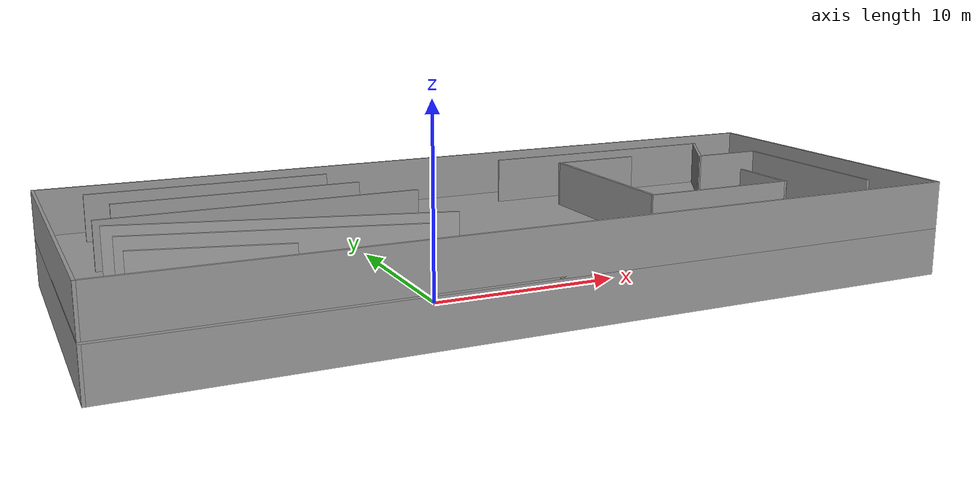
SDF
<?xml version='1.0'?>
<sdf version='1.7'>
  <model name='big_test'>
    <pose>4.2888 2.3837 0 0 -0 0</pose>
    <link name='Floor_0'>
      <collision name='Floor_0_Collision'>
        <geometry>
          <box>
            <size>43 18 0.1</size>
          </box>
        </geometry>
        <pose>0 0 0.05 0 -0 0</pose>
      </collision>
      <visual name='Floor_0_Visual'>
        <pose>0 0 0.05 0 -0 0</pose>
        <geometry>
          <box>
            <size>43 18 0.1</size>
          </box>
        </geometry>
        <material>
          <script>
            <uri>file://media/materials/scripts/gazebo.material</uri>
            <name>Gazebo/Grey</name>
          </script>
          <ambient>1 1 1 1</ambient>
        </material>
        <meta>
          <layer>1</layer>
        </meta>
      </visual>
      <pose>0 -0 2.5 0 -0 0</pose>
    </link>
    <link name='Wall_0'>
      <collision name='Wall_0_Collision'>
        <geometry>
          <box>
            <size>18 0.15 2.5</size>
          </box>
        </geometry>
        <pose>0 0 1.25 0 -0 0</pose>
      </collision>
      <visual name='Wall_0_Visual'>
        <pose>0 0 1.25 0 -0 0</pose>
        <geometry>
          <box>
            <size>18 0.15 2.5</size>
          </box>
        </geometry>
        <material>
          <script>
            <uri>file://media/materials/scripts/gazebo.material</uri>
            <name>Gazebo/Grey</name>
          </script>
          <ambient>1 1 1 1</ambient>
        </material>
        <meta>
          <layer>0</layer>
        </meta>
      </visual>
      <pose>-21.425 -0 0 0 -0 1.5708</pose>
    </link>
    <link name='Wall_1'>
      <collision name='Wall_1_Collision'>
        <geometry>
          <box>
            <size>43 0.15 2.5</size>
          </box>
        </geometry>
        <pose>0 0 1.25 0 -0 0</pose>
      </collision>
      <visual name='Wall_1_Visual'>
        <pose>0 0 1.25 0 -0 0</pose>
        <geometry>
          <box>
            <size>43 0.15 2.5</size>
          </box>
        </geometry>
        <material>
          <script>
            <uri>file://media/materials/scripts/gazebo.material</uri>
            <name>Gazebo/Grey</name>
          </script>
          <ambient>1 1 1 1</ambient>
        </material>
        <meta>
          <layer>0</layer>
        </meta>
      </visual>
      <pose>0 8.925 0 0 -0 0</pose>
    </link>
    <link name='Wall_13'>
      <collision name='Wall_13_Collision'>
        <geometry>
          <box>
            <size>13.5 0.15 2.5</size>
          </box>
        </geometry>
        <pose>0 0 1.25 0 -0 0</pose>
      </collision>
      <visual name='Wall_13_Visual'>
        <pose>0 0 1.25 0 -0 0</pose>
        <geometry>
          <box>
            <size>13.5 0.15 2.5</size>
          </box>
        </geometry>
        <material>
          <script>
            <uri>file://media/materials/scripts/gazebo.material</uri>
            <name>Gazebo/Grey</name>
          </script>
          <ambient>1 1 1 1</ambient>
        </material>
        <meta>
          <layer>1</layer>
        </meta>
      </visual>
      <pose>10.1593 6.46423 2.5 0 -0 0</pose>
    </link>
    <link name='Wall_14'>
      <collision name='Wall_14_Collision'>
        <geometry>
          <box>
            <size>4.5 0.15 2.5</size>
          </box>
        </geometry>
        <pose>0 0 1.25 0 -0 0</pose>
      </collision>
      <visual name='Wall_14_Visual'>
        <pose>0 0 1.25 0 -0 0</pose>
        <geometry>
          <box>
            <size>4.5 0.15 2.5</size>
          </box>
        </geometry>
        <material>
          <script>
            <uri>file://media/materials/scripts/gazebo.material</uri>
            <name>Gazebo/Grey</name>
          </script>
          <ambient>1 1 1 1</ambient>
        </material>
        <meta>
          <layer>1</layer>
        </meta>
      </visual>
      <pose>15.7468 4.58062 2.5 0 -0 -2.0944</pose>
    </link>
    <link name='Wall_15'>
      <collision name='Wall_15_Collision'>
        <geometry>
          <box>
            <size>4 0.15 2.5</size>
          </box>
        </geometry>
        <pose>0 0 1.25 0 -0 0</pose>
      </collision>
      <visual name='Wall_15_Visual'>
        <pose>0 0 1.25 0 -0 0</pose>
        <geometry>
          <box>
            <size>4 0.15 2.5</size>
          </box>
        </geometry>
        <material>
          <script>
            <uri>file://media/materials/scripts/gazebo.material</uri>
            <name>Gazebo/Grey</name>
          </script>
          <ambient>1 1 1 1</ambient>
        </material>
        <meta>
          <layer>1</layer>
        </meta>
      </visual>
      <pose>16.5843 2.69702 2.5 0 -0 0</pose>
    </link>
    <link name='Wall_16'>
      <collision name='Wall_16_Collision'>
        <geometry>
          <box>
            <size>9.75 0.15 2.5</size>
          </box>
        </geometry>
        <pose>0 0 1.25 0 -0 0</pose>
      </collision>
      <visual name='Wall_16_Visual'>
        <pose>0 0 1.25 0 -0 0</pose>
        <geometry>
          <box>
            <size>9.75 0.15 2.5</size>
          </box>
        </geometry>
        <material>
          <script>
            <uri>file://media/materials/scripts/gazebo.material</uri>
            <name>Gazebo/Grey</name>
          </script>
          <ambient>1 1 1 1</ambient>
        </material>
        <meta>
          <layer>1</layer>
        </meta>
      </visual>
      <pose>18.5093 -2.10298 2.5 0 -0 -1.5708</pose>
    </link>
    <link name='Wall_18'>
      <collision name='Wall_18_Collision'>
        <geometry>
          <box>
            <size>4.75 0.15 2.5</size>
          </box>
        </geometry>
        <pose>0 0 1.25 0 -0 0</pose>
      </collision>
      <visual name='Wall_18_Visual'>
        <pose>0 0 1.25 0 -0 0</pose>
        <geometry>
          <box>
            <size>4.75 0.15 2.5</size>
          </box>
        </geometry>
        <material>
          <script>
            <uri>file://media/materials/scripts/gazebo.material</uri>
            <name>Gazebo/Grey</name>
          </script>
          <ambient>1 1 1 1</ambient>
        </material>
        <meta>
          <layer>1</layer>
        </meta>
      </visual>
      <pose>8.53513 4.23108 2.5 0 -0 3.14159</pose>
    </link>
    <link name='Wall_19'>
      <collision name='Wall_19_Collision'>
        <geometry>
          <box>
            <size>9.75 0.15 2.5</size>
          </box>
        </geometry>
        <pose>0 0 1.25 0 -0 0</pose>
      </collision>
      <visual name='Wall_19_Visual'>
        <pose>0 0 1.25 0 -0 0</pose>
        <geometry>
          <box>
            <size>9.75 0.15 2.5</size>
          </box>
        </geometry>
        <material>
          <script>
            <uri>file://media/materials/scripts/gazebo.material</uri>
            <name>Gazebo/Grey</name>
          </script>
          <ambient>1 1 1 1</ambient>
        </material>
        <meta>
          <layer>1</layer>
        </meta>
      </visual>
      <pose>6.23513 -0.568918 2.5 0 -0 -1.5708</pose>
    </link>
    <link name='Wall_2'>
      <collision name='Wall_2_Collision'>
        <geometry>
          <box>
            <size>18 0.15 2.5</size>
          </box>
        </geometry>
        <pose>0 0 1.25 0 -0 0</pose>
      </collision>
      <visual name='Wall_2_Visual'>
        <pose>0 0 1.25 0 -0 0</pose>
        <geometry>
          <box>
            <size>18 0.15 2.5</size>
          </box>
        </geometry>
        <material>
          <script>
            <uri>file://media/materials/scripts/gazebo.material</uri>
            <name>Gazebo/Grey</name>
          </script>
          <ambient>1 1 1 1</ambient>
        </material>
        <meta>
          <layer>0</layer>
        </meta>
      </visual>
      <pose>21.425 -0 0 0 -0 -1.5708</pose>
    </link>
    <link name='Wall_20'>
      <collision name='Wall_20_Collision'>
        <geometry>
          <box>
            <size>8.25 0.15 2.5</size>
          </box>
        </geometry>
        <pose>0 0 1.25 0 -0 0</pose>
      </collision>
      <visual name='Wall_20_Visual'>
        <pose>0 0 1.25 0 -0 0</pose>
        <geometry>
          <box>
            <size>8.25 0.15 2.5</size>
          </box>
        </geometry>
        <material>
          <script>
            <uri>file://media/materials/scripts/gazebo.material</uri>
            <name>Gazebo/Grey</name>
          </script>
          <ambient>1 1 1 1</ambient>
        </material>
        <meta>
          <layer>1</layer>
        </meta>
      </visual>
      <pose>10.2851 -5.36892 2.5 0 -0 0</pose>
    </link>
    <link name='Wall_21'>
      <collision name='Wall_21_Collision'>
        <geometry>
          <box>
            <size>3.75 0.15 2.5</size>
          </box>
        </geometry>
        <pose>0 0 1.25 0 -0 0</pose>
      </collision>
      <visual name='Wall_21_Visual'>
        <pose>0 0 1.25 0 -0 0</pose>
        <geometry>
          <box>
            <size>3.75 0.15 2.5</size>
          </box>
        </geometry>
        <material>
          <script>
            <uri>file://media/materials/scripts/gazebo.material</uri>
            <name>Gazebo/Grey</name>
          </script>
          <ambient>1 1 1 1</ambient>
        </material>
        <meta>
          <layer>1</layer>
        </meta>
      </visual>
      <pose>14.3351 -3.56892 2.5 0 -0 1.5708</pose>
    </link>
    <link name='Wall_23'>
      <collision name='Wall_23_Collision'>
        <geometry>
          <box>
            <size>12.5 0.15 2.5</size>
          </box>
        </geometry>
        <pose>0 0 1.25 0 -0 0</pose>
      </collision>
      <visual name='Wall_23_Visual'>
        <pose>0 0 1.25 0 -0 0</pose>
        <geometry>
          <box>
            <size>12.5 0.15 2.5</size>
          </box>
        </geometry>
        <material>
          <script>
            <uri>file://media/materials/scripts/gazebo.material</uri>
            <name>Gazebo/Grey</name>
          </script>
          <ambient>1 1 1 1</ambient>
        </material>
        <meta>
          <layer>1</layer>
        </meta>
      </visual>
      <pose>-12.9978 6.74337 2.5 0 -0 0</pose>
    </link>
    <link name='Wall_25'>
      <collision name='Wall_25_Collision'>
        <geometry>
          <box>
            <size>12.5 0.15 2.5</size>
          </box>
        </geometry>
        <pose>0 0 1.25 0 -0 0</pose>
      </collision>
      <visual name='Wall_25_Visual'>
        <pose>0 0 1.25 0 -0 0</pose>
        <geometry>
          <box>
            <size>12.5 0.15 2.5</size>
          </box>
        </geometry>
        <material>
          <script>
            <uri>file://media/materials/scripts/gazebo.material</uri>
            <name>Gazebo/Grey</name>
          </script>
          <ambient>1 1 1 1</ambient>
        </material>
        <meta>
          <layer>1</layer>
        </meta>
      </visual>
      <pose>-12.1138 3.95194 2.5 0 -0 0</pose>
    </link>
    <link name='Wall_27'>
      <collision name='Wall_27_Collision'>
        <geometry>
          <box>
            <size>15.75 0.15 2.5</size>
          </box>
        </geometry>
        <pose>0 0 1.25 0 -0 0</pose>
      </collision>
      <visual name='Wall_27_Visual'>
        <pose>0 0 1.25 0 -0 0</pose>
        <geometry>
          <box>
            <size>15.75 0.15 2.5</size>
          </box>
        </geometry>
        <material>
          <script>
            <uri>file://media/materials/scripts/gazebo.material</uri>
            <name>Gazebo/Grey</name>
          </script>
          <ambient>1 1 1 1</ambient>
        </material>
        <meta>
          <layer>1</layer>
        </meta>
      </visual>
      <pose>-11.6985 0.834836 2.5 0 -0 0</pose>
    </link>
    <link name='Wall_3'>
      <collision name='Wall_3_Collision'>
        <geometry>
          <box>
            <size>43 0.15 2.5</size>
          </box>
        </geometry>
        <pose>0 0 1.25 0 -0 0</pose>
      </collision>
      <visual name='Wall_3_Visual'>
        <pose>0 0 1.25 0 -0 0</pose>
        <geometry>
          <box>
            <size>43 0.15 2.5</size>
          </box>
        </geometry>
        <material>
          <script>
            <uri>file://media/materials/scripts/gazebo.material</uri>
            <name>Gazebo/Grey</name>
          </script>
          <ambient>1 1 1 1</ambient>
        </material>
        <meta>
          <layer>0</layer>
        </meta>
      </visual>
      <pose>0 -8.925 0 0 -0 3.14159</pose>
    </link>
    <link name='Wall_30'>
      <collision name='Wall_30_Collision'>
        <geometry>
          <box>
            <size>16 0.15 2.5</size>
          </box>
        </geometry>
        <pose>0 0 1.25 0 -0 0</pose>
      </collision>
      <visual name='Wall_30_Visual'>
        <pose>0 0 1.25 0 -0 0</pose>
        <geometry>
          <box>
            <size>16 0.15 2.5</size>
          </box>
        </geometry>
        <material>
          <script>
            <uri>file://media/materials/scripts/gazebo.material</uri>
            <name>Gazebo/Grey</name>
          </script>
          <ambient>1 1 1 1</ambient>
        </material>
        <meta>
          <layer>1</layer>
        </meta>
      </visual>
      <pose>-11.6574 -2.51898 2.5 0 -0 -0.261799</pose>
    </link>
    <link name='Wall_32'>
      <collision name='Wall_32_Collision'>
        <geometry>
          <box>
            <size>13.75 0.15 2.5</size>
          </box>
        </geometry>
        <pose>0 0 1.25 0 -0 0</pose>
      </collision>
      <visual name='Wall_32_Visual'>
        <pose>0 0 1.25 0 -0 0</pose>
        <geometry>
          <box>
            <size>13.75 0.15 2.5</size>
          </box>
        </geometry>
        <material>
          <script>
            <uri>file://media/materials/scripts/gazebo.material</uri>
            <name>Gazebo/Grey</name>
          </script>
          <ambient>1 1 1 1</ambient>
        </material>
        <meta>
          <layer>1</layer>
        </meta>
      </visual>
      <pose>-12.5115 -4.46095 2.5 0 -0 -0.261799</pose>
    </link>
    <link name='Wall_34'>
      <collision name='Wall_34_Collision'>
        <geometry>
          <box>
            <size>7 0.15 2.5</size>
          </box>
        </geometry>
        <pose>0 0 1.25 0 -0 0</pose>
      </collision>
      <visual name='Wall_34_Visual'>
        <pose>0 0 1.25 0 -0 0</pose>
        <geometry>
          <box>
            <size>7 0.15 2.5</size>
          </box>
        </geometry>
        <material>
          <script>
            <uri>file://media/materials/scripts/gazebo.material</uri>
            <name>Gazebo/Grey</name>
          </script>
          <ambient>1 1 1 1</ambient>
        </material>
        <meta>
          <layer>1</layer>
        </meta>
      </visual>
      <pose>-15.7249 -6.2393 2.5 0 -0 -0.261799</pose>
    </link>
    <link name='Wall_5'>
      <collision name='Wall_5_Collision'>
        <geometry>
          <box>
            <size>18 0.15 2.5</size>
          </box>
        </geometry>
        <pose>0 0 1.25 0 -0 0</pose>
      </collision>
      <visual name='Wall_5_Visual'>
        <pose>0 0 1.25 0 -0 0</pose>
        <geometry>
          <box>
            <size>18 0.15 2.5</size>
          </box>
        </geometry>
        <material>
          <script>
            <uri>file://media/materials/scripts/gazebo.material</uri>
            <name>Gazebo/Grey</name>
          </script>
          <ambient>1 1 1 1</ambient>
        </material>
        <meta>
          <layer>1</layer>
        </meta>
      </visual>
      <pose>-21.425 -0 2.5 0 -0 1.5708</pose>
    </link>
    <link name='Wall_6'>
      <collision name='Wall_6_Collision'>
        <geometry>
          <box>
            <size>43 0.15 2.5</size>
          </box>
        </geometry>
        <pose>0 0 1.25 0 -0 0</pose>
      </collision>
      <visual name='Wall_6_Visual'>
        <pose>0 0 1.25 0 -0 0</pose>
        <geometry>
          <box>
            <size>43 0.15 2.5</size>
          </box>
        </geometry>
        <material>
          <script>
            <uri>file://media/materials/scripts/gazebo.material</uri>
            <name>Gazebo/Grey</name>
          </script>
          <ambient>1 1 1 1</ambient>
        </material>
        <meta>
          <layer>1</layer>
        </meta>
      </visual>
      <pose>0 8.925 2.5 0 -0 0</pose>
    </link>
    <link name='Wall_7'>
      <collision name='Wall_7_Collision'>
        <geometry>
          <box>
            <size>18 0.15 2.5</size>
          </box>
        </geometry>
        <pose>0 0 1.25 0 -0 0</pose>
      </collision>
      <visual name='Wall_7_Visual'>
        <pose>0 0 1.25 0 -0 0</pose>
        <geometry>
          <box>
            <size>18 0.15 2.5</size>
          </box>
        </geometry>
        <material>
          <script>
            <uri>file://media/materials/scripts/gazebo.material</uri>
            <name>Gazebo/Grey</name>
          </script>
          <ambient>1 1 1 1</ambient>
        </material>
        <meta>
          <layer>1</layer>
        </meta>
      </visual>
      <pose>21.425 -0 2.5 0 -0 -1.5708</pose>
    </link>
    <link name='Wall_8'>
      <collision name='Wall_8_Collision'>
        <geometry>
          <box>
            <size>43 0.15 2.5</size>
          </box>
        </geometry>
        <pose>0 0 1.25 0 -0 0</pose>
      </collision>
      <visual name='Wall_8_Visual'>
        <pose>0 0 1.25 0 -0 0</pose>
        <geometry>
          <box>
            <size>43 0.15 2.5</size>
          </box>
        </geometry>
        <material>
          <script>
            <uri>file://media/materials/scripts/gazebo.material</uri>
            <name>Gazebo/Grey</name>
          </script>
          <ambient>1 1 1 1</ambient>
        </material>
        <meta>
          <layer>1</layer>
        </meta>
      </visual>
      <pose>0 -8.925 2.5 0 -0 3.14159</pose>
    </link>
    <static>1</static>
  </model>
</sdf>
